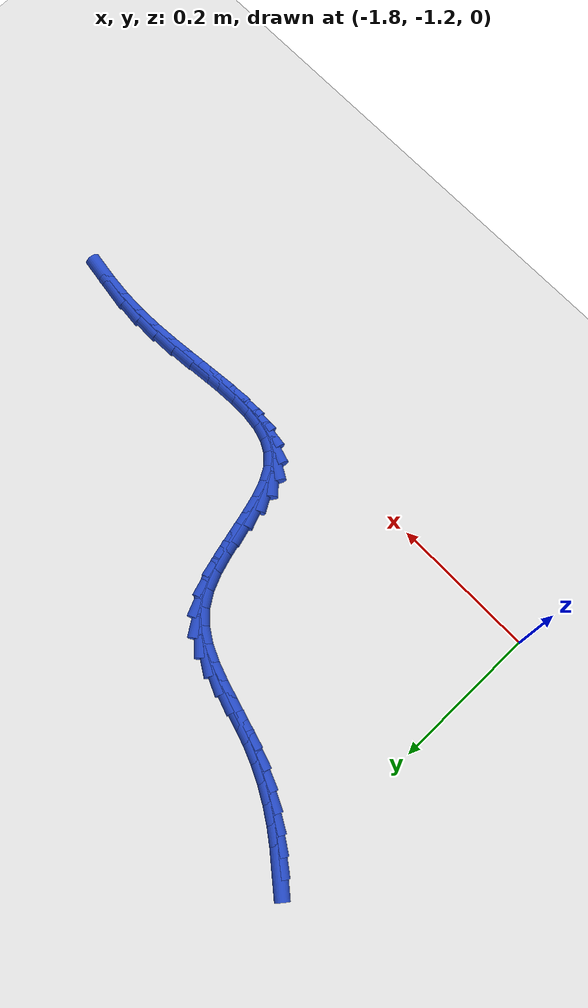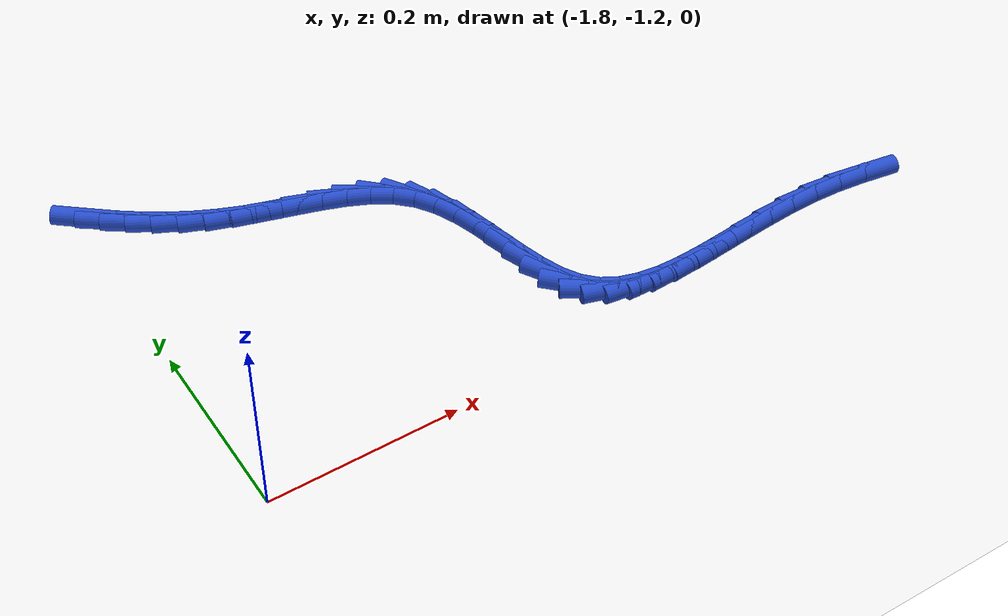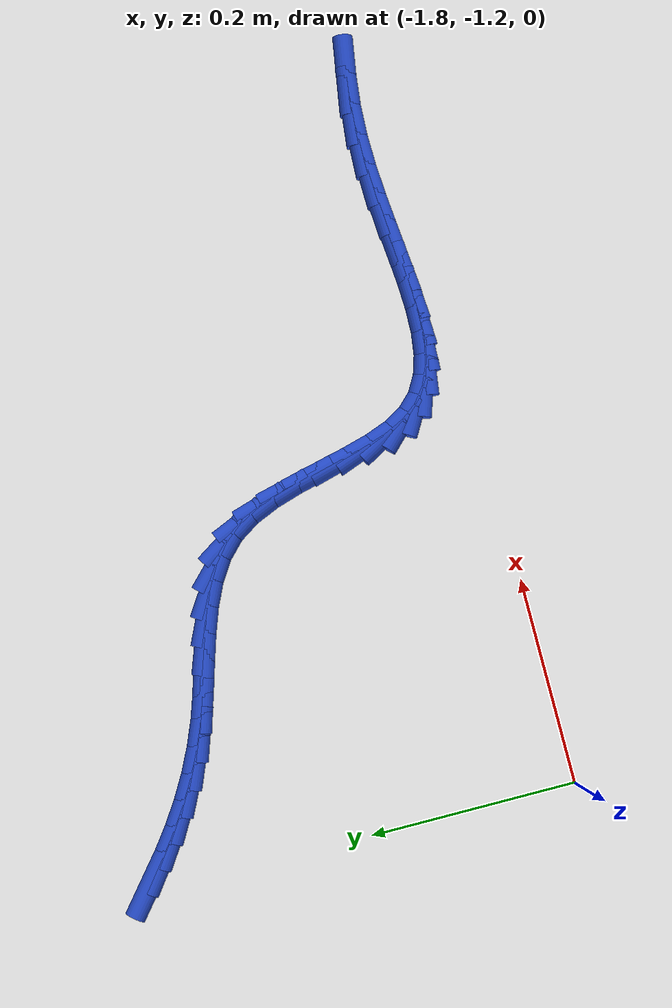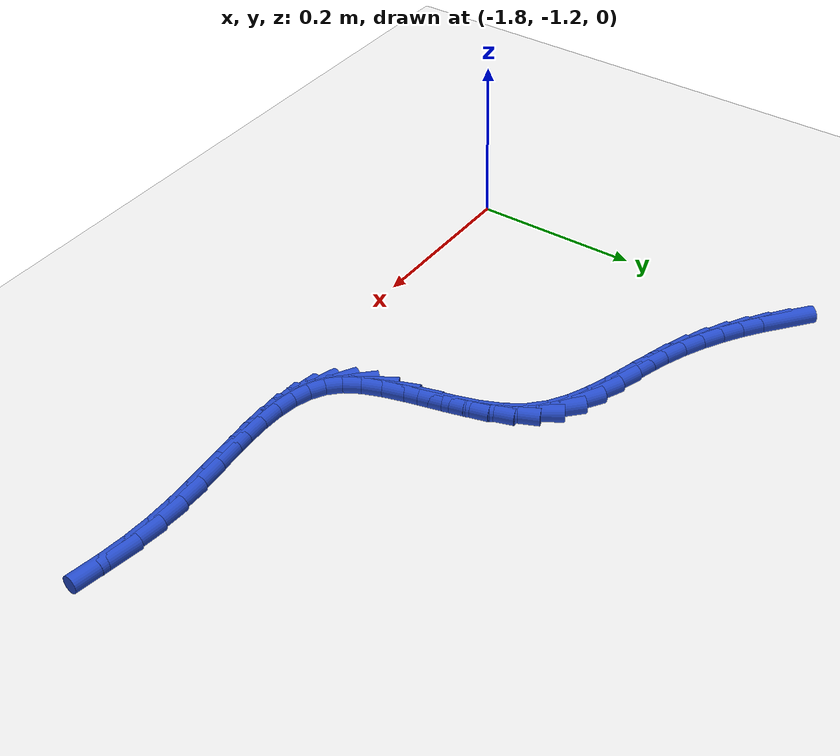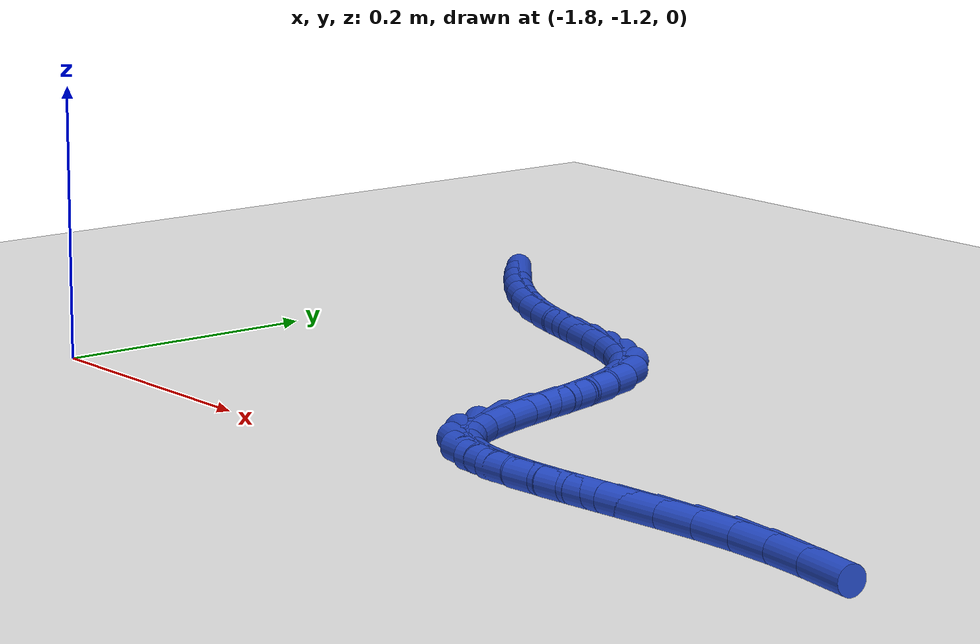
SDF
<sdf version="1.6">
 <world name="default">
  <model name="ground_plane">
   <static>1</static>
   <link name="link">
    <collision name="collision">
     <geometry><plane><normal>0 0 1</normal><size>100 100</size></plane></geometry>
     <surface><friction><ode><mu>100</mu><mu2>50</mu2></ode></friction></surface>
    </collision>
    <visual name="visual">
     <cast_shadows>0</cast_shadows>
     <geometry><plane><normal>0 0 1</normal><size>100 100</size></plane></geometry>
     <material>
      <script><uri>file://media/materials/scripts/gazebo.material</uri><name>Gazebo/WhiteGlow</name></script>
     </material>
    </visual>
   </link>
  </model>
  <model name="line">
   <link name="link_176">
    <pose>-1.7860777692130987 -0.7900257157896833 0.01 0 1.57 -0.6837955380079042</pose>
    <collision name="collision">
     <geometry><cylinder><radius>0.01</radius><length>0.08</length></cylinder></geometry>
    </collision>
    <visual name="visual">
     <material>
      <script><name>Gazebo/Blue</name><uri>file://media/materials/scripts/gazebo.material</uri></script>
     </material>
     <geometry><cylinder><radius>0.01</radius><length>0.08</length></cylinder></geometry>
    </visual>
   </link>
   <link name="link_177">
    <pose>-1.76618671229745 -0.8062360976981374 0.01 0 1.57 -0.6322865047237707</pose>
    <collision name="collision">
     <geometry><cylinder><radius>0.01</radius><length>0.08</length></cylinder></geometry>
    </collision>
    <visual name="visual">
     <material>
      <script><name>Gazebo/Blue</name><uri>file://media/materials/scripts/gazebo.material</uri></script>
     </material>
     <geometry><cylinder><radius>0.01</radius><length>0.08</length></cylinder></geometry>
    </visual>
   </link>
   <link name="link_178">
    <pose>-1.7454640976649032 -0.8214179537788142 0.01 0 1.57 -0.5757419396468814</pose>
    <collision name="collision">
     <geometry><cylinder><radius>0.01</radius><length>0.08</length></cylinder></geometry>
    </collision>
    <visual name="visual">
     <material>
      <script><name>Gazebo/Blue</name><uri>file://media/materials/scripts/gazebo.material</uri></script>
     </material>
     <geometry><cylinder><radius>0.01</radius><length>0.08</length></cylinder></geometry>
    </visual>
   </link>
   <link name="link_179">
    <pose>-1.7238406733419014 -0.8354537083092641 0.01 0 1.57 -0.5145132350238324</pose>
    <collision name="collision">
     <geometry><cylinder><radius>0.01</radius><length>0.08</length></cylinder></geometry>
    </collision>
    <visual name="visual">
     <material>
      <script><name>Gazebo/Blue</name><uri>file://media/materials/scripts/gazebo.material</uri></script>
     </material>
     <geometry><cylinder><radius>0.01</radius><length>0.08</length></cylinder></geometry>
    </visual>
   </link>
   <link name="link_180">
    <pose>-1.7012471873548873 -0.8482257855670376 0.01 0 1.57 -0.4491378364038329</pose>
    <collision name="collision">
     <geometry><cylinder><radius>0.01</radius><length>0.08</length></cylinder></geometry>
    </collision>
    <visual name="visual">
     <material>
      <script><name>Gazebo/Blue</name><uri>file://media/materials/scripts/gazebo.material</uri></script>
     </material>
     <geometry><cylinder><radius>0.01</radius><length>0.08</length></cylinder></geometry>
    </visual>
   </link>
   <link name="link_181">
    <pose>-1.677614387730304 -0.8596166098296859 0.01 0 1.57 -0.3803482386834975</pose>
    <collision name="collision">
     <geometry><cylinder><radius>0.01</radius><length>0.08</length></cylinder></geometry>
    </collision>
    <visual name="visual">
     <material>
      <script><name>Gazebo/Blue</name><uri>file://media/materials/scripts/gazebo.material</uri></script>
     </material>
     <geometry><cylinder><radius>0.01</radius><length>0.08</length></cylinder></geometry>
    </visual>
   </link>
   <link name="link_182">
    <pose>-1.6528730301841499 -0.8695086145662644 0.01 0 1.57 -0.31700275298289543</pose>
    <collision name="collision">
     <geometry><cylinder><radius>0.01</radius><length>0.08</length></cylinder></geometry>
    </collision>
    <visual name="visual">
     <material>
      <script><name>Gazebo/Blue</name><uri>file://media/materials/scripts/gazebo.material</uri></script>
     </material>
     <geometry><cylinder><radius>0.01</radius><length>0.08</length></cylinder></geometry>
    </visual>
   </link>
   <link name="link_183">
    <pose>-1.6271032635882785 -0.8779628064027657 0.01 0 1.57 -0.2864710945476038</pose>
    <collision name="collision">
     <geometry><cylinder><radius>0.01</radius><length>0.08</length></cylinder></geometry>
    </collision>
    <visual name="visual">
     <material>
      <script><name>Gazebo/Blue</name><uri>file://media/materials/scripts/gazebo.material</uri></script>
     </material>
     <geometry><cylinder><radius>0.01</radius><length>0.08</length></cylinder></geometry>
    </visual>
   </link>
   <link name="link_184">
    <pose>-1.6009175160384954 -0.8856764378550843 0.01 0 1.57 -0.293254550083311</pose>
    <collision name="collision">
     <geometry><cylinder><radius>0.01</radius><length>0.08</length></cylinder></geometry>
    </collision>
    <visual name="visual">
     <material>
      <script><name>Gazebo/Blue</name><uri>file://media/materials/scripts/gazebo.material</uri></script>
     </material>
     <geometry><cylinder><radius>0.01</radius><length>0.08</length></cylinder></geometry>
    </visual>
   </link>
   <link name="link_185">
    <pose>-1.5750467111752564 -0.8934884019538346 0.01 0 1.57 -0.3388428854182343</pose>
    <collision name="collision">
     <geometry><cylinder><radius>0.01</radius><length>0.08</length></cylinder></geometry>
    </collision>
    <visual name="visual">
     <material>
      <script><name>Gazebo/Blue</name><uri>file://media/materials/scripts/gazebo.material</uri></script>
     </material>
     <geometry><cylinder><radius>0.01</radius><length>0.08</length></cylinder></geometry>
    </visual>
   </link>
   <link name="link_186">
    <pose>-1.550221772639017 -0.9022375917296307 0.01 0 1.57 -0.428383622718136</pose>
    <collision name="collision">
     <geometry><cylinder><radius>0.01</radius><length>0.08</length></cylinder></geometry>
    </collision>
    <visual name="visual">
     <material>
      <script><name>Gazebo/Blue</name><uri>file://media/materials/scripts/gazebo.material</uri></script>
     </material>
     <geometry><cylinder><radius>0.01</radius><length>0.08</length></cylinder></geometry>
    </visual>
   </link>
   <link name="link_187">
    <pose>-1.5271736240702338 -0.9127629002130874 0.01 0 1.57 -0.5691212012181062</pose>
    <collision name="collision">
     <geometry><cylinder><radius>0.01</radius><length>0.08</length></cylinder></geometry>
    </collision>
    <visual name="visual">
     <material>
      <script><name>Gazebo/Blue</name><uri>file://media/materials/scripts/gazebo.material</uri></script>
     </material>
     <geometry><cylinder><radius>0.01</radius><length>0.08</length></cylinder></geometry>
    </visual>
   </link>
   <link name="link_188">
    <pose>-1.5066331891093614 -0.9259032204348185 0.01 0 1.57 -0.7645263939193063</pose>
    <collision name="collision">
     <geometry><cylinder><radius>0.01</radius><length>0.08</length></cylinder></geometry>
    </collision>
    <visual name="visual">
     <material>
      <script><name>Gazebo/Blue</name><uri>file://media/materials/scripts/gazebo.material</uri></script>
     </material>
     <geometry><cylinder><radius>0.01</radius><length>0.08</length></cylinder></geometry>
    </visual>
   </link>
   <link name="link_189">
    <pose>-1.4893313913968573 -0.9424974454254386 0.01 0 1.57 -0.9899265793229096</pose>
    <collision name="collision">
     <geometry><cylinder><radius>0.01</radius><length>0.08</length></cylinder></geometry>
    </collision>
    <visual name="visual">
     <material>
      <script><name>Gazebo/Blue</name><uri>file://media/materials/scripts/gazebo.material</uri></script>
     </material>
     <geometry><cylinder><radius>0.01</radius><length>0.08</length></cylinder></geometry>
    </visual>
   </link>
   <link name="link_190">
    <pose>-1.475788307946458 -0.9631294242514757 0.01 0 1.57 -1.1619795527129253</pose>
    <collision name="collision">
     <geometry><cylinder><radius>0.01</radius><length>0.08</length></cylinder></geometry>
    </collision>
    <visual name="visual">
     <material>
      <script><name>Gazebo/Blue</name><uri>file://media/materials/scripts/gazebo.material</uri></script>
     </material>
     <geometry><cylinder><radius>0.01</radius><length>0.08</length></cylinder></geometry>
    </visual>
   </link>
   <link name="link_191">
    <pose>-1.4654241768233904 -0.9870526205250993 0.01 0 1.57 -1.268390924078101</pose>
    <collision name="collision">
     <geometry><cylinder><radius>0.01</radius><length>0.08</length></cylinder></geometry>
    </collision>
    <visual name="visual">
     <material>
      <script><name>Gazebo/Blue</name><uri>file://media/materials/scripts/gazebo.material</uri></script>
     </material>
     <geometry><cylinder><radius>0.01</radius><length>0.08</length></cylinder></geometry>
    </visual>
   </link>
   <link name="link_192">
    <pose>-1.4573017841712919 -1.0130881174288215 0.01 0 1.57 -1.323170751797121</pose>
    <collision name="collision">
     <geometry><cylinder><radius>0.01</radius><length>0.08</length></cylinder></geometry>
    </collision>
    <visual name="visual">
     <material>
      <script><name>Gazebo/Blue</name><uri>file://media/materials/scripts/gazebo.material</uri></script>
     </material>
     <geometry><cylinder><radius>0.01</radius><length>0.08</length></cylinder></geometry>
    </visual>
   </link>
   <link name="link_193">
    <pose>-1.4504837259776016 -1.0400567681287132 0.01 0 1.57 -1.3339181784407055</pose>
    <collision name="collision">
     <geometry><cylinder><radius>0.01</radius><length>0.08</length></cylinder></geometry>
    </collision>
    <visual name="visual">
     <material>
      <script><name>Gazebo/Blue</name><uri>file://media/materials/scripts/gazebo.material</uri></script>
     </material>
     <geometry><cylinder><radius>0.01</radius><length>0.08</length></cylinder></geometry>
    </visual>
   </link>
   <link name="link_194">
    <pose>-1.4440325982297582 -1.0667794257908452 0.01 0 1.57 -1.3000508478607615</pose>
    <collision name="collision">
     <geometry><cylinder><radius>0.01</radius><length>0.08</length></cylinder></geometry>
    </collision>
    <visual name="visual">
     <material>
      <script><name>Gazebo/Blue</name><uri>file://media/materials/scripts/gazebo.material</uri></script>
     </material>
     <geometry><cylinder><radius>0.01</radius><length>0.08</length></cylinder></geometry>
    </visual>
   </link>
   <link name="link_195">
    <pose>-1.4370109969152016 -1.0920769435812894 0.01 0 1.57 -1.211271856320175</pose>
    <collision name="collision">
     <geometry><cylinder><radius>0.01</radius><length>0.08</length></cylinder></geometry>
    </collision>
    <visual name="visual">
     <material>
      <script><name>Gazebo/Blue</name><uri>file://media/materials/scripts/gazebo.material</uri></script>
     </material>
     <geometry><cylinder><radius>0.01</radius><length>0.08</length></cylinder></geometry>
    </visual>
   </link>
   <link name="link_196">
    <pose>-1.428481518021371 -1.1147701746661163 0.01 0 1.57 -1.044932499027792</pose>
    <collision name="collision">
     <geometry><cylinder><radius>0.01</radius><length>0.08</length></cylinder></geometry>
    </collision>
    <visual name="visual">
     <material>
      <script><name>Gazebo/Blue</name><uri>file://media/materials/scripts/gazebo.material</uri></script>
     </material>
     <geometry><cylinder><radius>0.01</radius><length>0.08</length></cylinder></geometry>
    </visual>
   </link>
   <link name="link_197">
    <pose>-1.4175067575357054 -1.1336799722113973 0.01 0 1.57 -0.7877601432435256</pose>
    <collision name="collision">
     <geometry><cylinder><radius>0.01</radius><length>0.08</length></cylinder></geometry>
    </collision>
    <visual name="visual">
     <material>
      <script><name>Gazebo/Blue</name><uri>file://media/materials/scripts/gazebo.material</uri></script>
     </material>
     <geometry><cylinder><radius>0.01</radius><length>0.08</length></cylinder></geometry>
    </visual>
   </link>
   <link name="link_198">
    <pose>-1.4033432206681598 -1.1479105755906729 0.01 0 1.57 -0.5190442105820369</pose>
    <collision name="collision">
     <geometry><cylinder><radius>0.01</radius><length>0.08</length></cylinder></geometry>
    </collision>
    <visual name="visual">
     <material>
      <script><name>Gazebo/Blue</name><uri>file://media/materials/scripts/gazebo.material</uri></script>
     </material>
     <geometry><cylinder><radius>0.01</radius><length>0.08</length></cylinder></geometry>
    </visual>
   </link>
   <link name="link_199">
    <pose>-1.386075051515216 -1.1577757666745614 0.01 0 1.57 -0.29674396000043224</pose>
    <collision name="collision">
     <geometry><cylinder><radius>0.01</radius><length>0.08</length></cylinder></geometry>
    </collision>
    <visual name="visual">
     <material>
      <script><name>Gazebo/Blue</name><uri>file://media/materials/scripts/gazebo.material</uri></script>
     </material>
     <geometry><cylinder><radius>0.01</radius><length>0.08</length></cylinder></geometry>
    </visual>
   </link>
   <link name="link_200">
    <pose>-1.366007164312332 -1.1639119690914828 0.01 0 1.57 -0.13408763068286308</pose>
    <collision name="collision">
     <geometry><cylinder><radius>0.01</radius><length>0.08</length></cylinder></geometry>
    </collision>
    <visual name="visual">
     <material>
      <script><name>Gazebo/Blue</name><uri>file://media/materials/scripts/gazebo.material</uri></script>
     </material>
     <geometry><cylinder><radius>0.01</radius><length>0.08</length></cylinder></geometry>
    </visual>
   </link>
   <link name="link_201">
    <pose>-1.3434444753888217 -1.1669556095299 0.01 0 1.57 -0.023730657401951384</pose>
    <collision name="collision">
     <geometry><cylinder><radius>0.01</radius><length>0.08</length></cylinder></geometry>
    </collision>
    <visual name="visual">
     <material>
      <script><name>Gazebo/Blue</name><uri>file://media/materials/scripts/gazebo.material</uri></script>
     </material>
     <geometry><cylinder><radius>0.01</radius><length>0.08</length></cylinder></geometry>
    </visual>
   </link>
   <link name="link_202">
    <pose>-1.318691901073999 -1.1675431146782749 0.01 0 1.57 0.046225196749619266</pose>
    <collision name="collision">
     <geometry><cylinder><radius>0.01</radius><length>0.08</length></cylinder></geometry>
    </collision>
    <visual name="visual">
     <material>
      <script><name>Gazebo/Blue</name><uri>file://media/materials/scripts/gazebo.material</uri></script>
     </material>
     <geometry><cylinder><radius>0.01</radius><length>0.08</length></cylinder></geometry>
    </visual>
   </link>
   <link name="link_203">
    <pose>-1.2920543576971784 -1.1663109112250705 0.01 0 1.57 0.08539392097410956</pose>
    <collision name="collision">
     <geometry><cylinder><radius>0.01</radius><length>0.08</length></cylinder></geometry>
    </collision>
    <visual name="visual">
     <material>
      <script><name>Gazebo/Blue</name><uri>file://media/materials/scripts/gazebo.material</uri></script>
     </material>
     <geometry><cylinder><radius>0.01</radius><length>0.08</length></cylinder></geometry>
    </visual>
   </link>
   <link name="link_204">
    <pose>-1.2638367615876744 -1.1638954258587482 0.01 0 1.57 0.1001073162098474</pose>
    <collision name="collision">
     <geometry><cylinder><radius>0.01</radius><length>0.08</length></cylinder></geometry>
    </collision>
    <visual name="visual">
     <material>
      <script><name>Gazebo/Blue</name><uri>file://media/materials/scripts/gazebo.material</uri></script>
     </material>
     <geometry><cylinder><radius>0.01</radius><length>0.08</length></cylinder></geometry>
    </visual>
   </link>
   <link name="link_205">
    <pose>-1.234344029074801 -1.1609330852677704 0.01 0 1.57 0.09402562827846889</pose>
    <collision name="collision">
     <geometry><cylinder><radius>0.01</radius><length>0.08</length></cylinder></geometry>
    </collision>
    <visual name="visual">
     <material>
      <script><name>Gazebo/Blue</name><uri>file://media/materials/scripts/gazebo.material</uri></script>
     </material>
     <geometry><cylinder><radius>0.01</radius><length>0.08</length></cylinder></geometry>
    </visual>
   </link>
   <link name="link_206">
    <pose>-1.2038810764878722 -1.1580603161405998 0.01 0 1.57 0.06885631908165367</pose>
    <collision name="collision">
     <geometry><cylinder><radius>0.01</radius><length>0.08</length></cylinder></geometry>
    </collision>
    <visual name="visual">
     <material>
      <script><name>Gazebo/Blue</name><uri>file://media/materials/scripts/gazebo.material</uri></script>
     </material>
     <geometry><cylinder><radius>0.01</radius><length>0.08</length></cylinder></geometry>
    </visual>
   </link>
   <link name="link_207">
    <pose>-1.172752820156203 -1.1559135451656983 0.01 0 1.57 0.024903707656317428</pose>
    <collision name="collision">
     <geometry><cylinder><radius>0.01</radius><length>0.08</length></cylinder></geometry>
    </collision>
    <visual name="visual">
     <material>
      <script><name>Gazebo/Blue</name><uri>file://media/materials/scripts/gazebo.material</uri></script>
     </material>
     <geometry><cylinder><radius>0.01</radius><length>0.08</length></cylinder></geometry>
    </visual>
   </link>
   <link name="link_208">
    <pose>-1.1412641764091058 -1.1551291990315287 0.01 0 1.57 -0.03808148015547936</pose>
    <collision name="collision">
     <geometry><cylinder><radius>0.01</radius><length>0.08</length></cylinder></geometry>
    </collision>
    <visual name="visual">
     <material>
      <script><name>Gazebo/Blue</name><uri>file://media/materials/scripts/gazebo.material</uri></script>
     </material>
     <geometry><cylinder><radius>0.01</radius><length>0.08</length></cylinder></geometry>
    </visual>
   </link>
   <link name="link_209">
    <pose>-1.109719144143351 -1.1563310615879494 0.01 0 1.57 -0.10496418258294823</pose>
    <collision name="collision">
     <geometry><cylinder><radius>0.01</radius><length>0.08</length></cylinder></geometry>
    </collision>
    <visual name="visual">
     <material>
      <script><name>Gazebo/Blue</name><uri>file://media/materials/scripts/gazebo.material</uri></script>
     </material>
     <geometry><cylinder><radius>0.01</radius><length>0.08</length></cylinder></geometry>
    </visual>
   </link>
   <link name="link_210">
    <pose>-1.078384661337054 -1.1596321922562913 0.01 0 1.57 -0.15530012593846884</pose>
    <collision name="collision">
     <geometry><cylinder><radius>0.01</radius><length>0.08</length></cylinder></geometry>
    </collision>
    <visual name="visual">
     <material>
      <script><name>Gazebo/Blue</name><uri>file://media/materials/scripts/gazebo.material</uri></script>
     </material>
     <geometry><cylinder><radius>0.01</radius><length>0.08</length></cylinder></geometry>
    </visual>
   </link>
  </model>
 </world>
</sdf>
